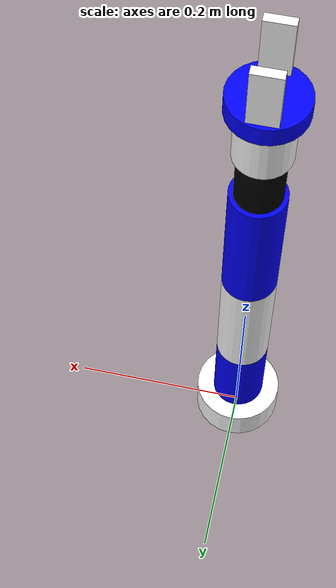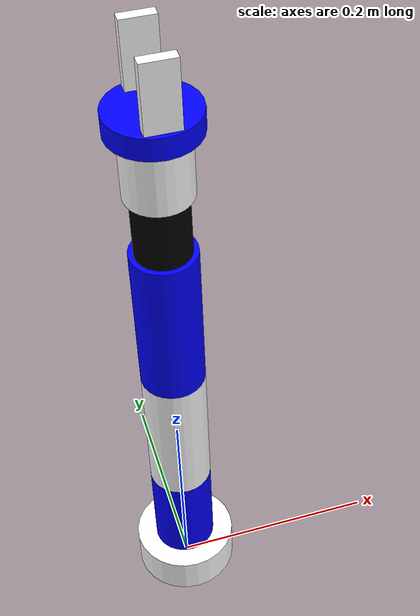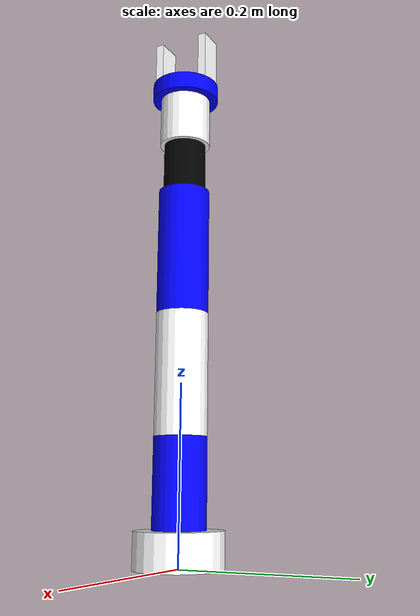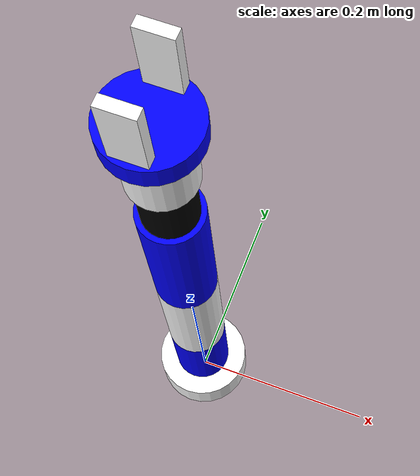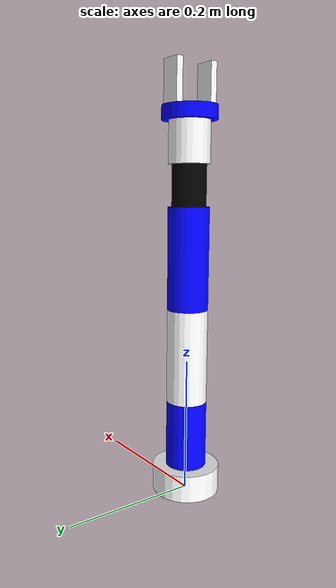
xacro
<?xml version="1.0"?>
<robot name="marm" xmlns:xacro="http://www.ros.org/wiki/xacro">

    <!-- Defining the colors used in this robot -->
    <material name="Black">
        <color rgba="0 0 0 1"/>
    </material>
    <material name="White">
        <color rgba="1 1 1 1"/>
    </material>
    <material name="Blue">
        <color rgba="0 0 1 1"/>
    </material>
    <material name="Red">
        <color rgba="1 0 0 1"/>
    </material>

    <!-- Constants -->
    <xacro:property name="M_PI" value="3.14159"/>

    <!-- link1 properties -->
    <xacro:property name="link0_radius" value="0.05" />
    <xacro:property name="link0_length" value="0.04" />
    <xacro:property name="link0_mass" value="1" />

    <!-- link1 properties -->
    <xacro:property name="link1_radius" value="0.03" />
    <xacro:property name="link1_length" value="0.10" />
    <xacro:property name="link1_mass" value="1" />

    <!-- link2 properties -->
    <xacro:property name="link2_radius" value="0.03" />
    <xacro:property name="link2_length" value="0.14" />
    <xacro:property name="link2_mass" value="0.8" />

    <!-- link3 properties -->
    <xacro:property name="link3_radius" value="0.03" />
    <xacro:property name="link3_length" value="0.15" />
    <xacro:property name="link3_mass" value="0.8" />

    <!-- link4 properties -->
    <xacro:property name="link4_radius" value="0.025" />
    <xacro:property name="link4_length" value="0.06" />
    <xacro:property name="link4_mass" value="0.7" />

    <!-- link5 properties -->
    <xacro:property name="link5_radius" value="0.03" />
    <xacro:property name="link5_length" value="0.06" />
    <xacro:property name="link5_mass" value="0.7" />

    <!-- link6 properties -->
    <xacro:property name="link6_radius" value="0.04" />
    <xacro:property name="link6_length" value="0.02" />
    <xacro:property name="link6_mass" value="0.6" />

    <!-- gripper -->
    <xacro:property name="gripper_length" value="0.03" />
    <xacro:property name="gripper_width" value="0.01" />
    <xacro:property name="gripper_height" value="0.06" />
    <xacro:property name="gripper_mass" value="0.5" />

    <!-- Gripper frame -->
    <xacro:property name="grasp_frame_radius" value="0.001" />

    <!-- Macro for inertia matrix -->
    <xacro:macro name="cylinder_inertial_matrix" params="m r h">
        <inertial>
            <mass value="${m}" />
            <inertia ixx="${m*(3*r*r+h*h)/12}" ixy = "0" ixz = "0"
                iyy="${m*(3*r*r+h*h)/12}" iyz = "0"
                izz="${m*r*r/2}" />
        </inertial>
    </xacro:macro>

    <xacro:macro name="box_inertial_matrix" params="m w h d">
        <inertial>
            <mass value="${m}" />
            <inertia ixx="${m*(h*h+d*d)/12}" ixy = "0" ixz = "0"
                iyy="${m*(w*w+d*d)/12}" iyz = "0"
                izz="${m*(w*w+h*h)/12}" />
        </inertial>
    </xacro:macro>

    <!-- /////////////////////////////////////   ARM BASE    ////////////////////////////////////////////// -->
    <!-- 地盘，一般不需要碰撞，只需要显示 -->
    <link name="base_link">
        <visual>
            <origin xyz="0 0 0" rpy="0 0 0" />
            <geometry>
                <box size="0.001 0.001 0.001" />
            </geometry>
        </visual>
    </link>

    <!-- 串联，连接上面的link0 -->
    <joint name="base_joint" type="fixed">
        <origin xyz="0 0 ${link0_length/2}" rpy="0 0 0" />
        <parent link="base_link"/>
        <child link="link0" />
    </joint>

    <!-- /////////////////////////////////////    LINK0    ////////////////////////////////////////////// -->
    <link name="link0">
        <visual>
            <origin xyz="0 0 0" rpy="0 0 0" />
            <geometry>
                <cylinder radius="${link0_radius}" length="${link0_length}"/>
            </geometry>
            <material name="White" />
        </visual>
        <collision>
            <origin xyz="0 0 0" rpy="0 0 0" />
            <geometry>
                <cylinder radius="${link0_radius}" length="${link0_length}"/>
            </geometry>
        </collision>
        <cylinder_inertial_matrix m="${link0_mass}" r="${link0_radius}" h="${link0_length}"/>
    </link>

    <joint name="joint1" type="revolute">
        <parent link="link0"/>
        <child link="link1"/>
        <origin xyz="0 0 ${link0_length/2}" rpy="0 ${M_PI/2} 0" />
        <axis xyz="-1 0 0" />
        <limit effort="300" velocity="1" lower="${-M_PI}" upper="${M_PI}"/>
    </joint>

    <!-- /////////////////////////////////////   LINK1  ////////////////////////////////////////////// -->
    <link name="link1" >
        <visual>
            <origin xyz="-${link1_length/2} 0 0" rpy="0 ${M_PI/2} 0" />
            <geometry>
                <cylinder radius="${link1_radius}" length="${link1_length}"/>
            </geometry>
            <material name="Blue" />
        </visual>
        <collision>
            <origin xyz="-${link1_length/2} 0 0" rpy="0 ${M_PI/2} 0" />
            <geometry>
                <cylinder radius="${link1_radius}" length="${link1_length}"/>
            </geometry>
        </collision>
        <cylinder_inertial_matrix m="${link1_mass}" r="${link1_radius}" h="${link1_length}"/>
    </link>

    <joint name="joint2" type="revolute">
        <parent link="link1"/>
        <child link="link2"/>
        <origin xyz="-${link1_length} 0 0.0" rpy="-${M_PI/2} 0 ${M_PI/2}" />
        <axis xyz="1 0 0" />
        <limit effort="300" velocity="1" lower="${-M_PI}" upper="${M_PI}" />
    </joint>

    <!-- ///////////////////////////////////////   LINK2  ////////////////////////////////////////////// -->
    <link name="link2" >
        <visual>
            <origin xyz="0 0 ${link2_length/2}" rpy="0 0 0" />
            <geometry>
                <cylinder radius="${link2_radius}" length="${link2_length}"/>
            </geometry>
            <material name="White" />
        </visual>

        <collision>
            <origin xyz="0 0 ${link2_length/2}" rpy="0 0 0" />
            <geometry>
                <cylinder radius="${link2_radius}" length="${link2_length}"/>
            </geometry>
        </collision>
        <cylinder_inertial_matrix m="${link2_mass}" r="${link2_radius}" h="${link2_length}"/>
    </link>

    <joint name="joint3" type="revolute">
        <parent link="link2"/>
        <child link="link3"/>
        <origin xyz="0 0 ${link2_length}" rpy="0 ${M_PI} 0" />
        <axis xyz="-1 0 0" />
        <limit effort="300" velocity="1" lower="${-M_PI}" upper="${M_PI}" />
    </joint>

    <!-- /////////////////////////////////   LINK3  ///////////////////////////////////////////////////// -->
    <link name="link3" >
        <visual>
            <origin xyz="0 0 -${link3_length/2}" rpy="0 0 0" />
            <geometry>
                <cylinder radius="${link3_radius}" length="${link3_length}"/>
            </geometry>
            <material name="Blue" />
        </visual>
        <collision>
            <origin xyz="0 0 -${link3_length/2}" rpy="0 0 0" />
            <geometry>
                <cylinder radius="${link3_radius}" length="${link3_length}"/>
            </geometry>
        </collision>
        <cylinder_inertial_matrix m="${link3_mass}" r="${link3_radius}" h="${link3_length}"/>
    </link>

    <joint name="joint4" type="revolute">
        <parent link="link3"/>
        <child link="link4"/>
        <origin xyz="0.0 0.0 -${link3_length}" rpy="0 ${M_PI/2} ${M_PI}" />
        <axis xyz="1 0 0" />
        <limit effort="300" velocity="1" lower="${-M_PI}" upper="${M_PI}" />
    </joint>

    <!-- ///////////////////////////////////   LINK4  //////////////////////////////////////////////// -->
    <link name="link4" >
        <visual>
            <origin xyz="${link4_length/2} 0 0" rpy="0 ${M_PI/2} 0" />
            <geometry>
                <cylinder radius="${link4_radius}" length="${link4_length}"/>
            </geometry>
            <material name="Black" />
        </visual>
        <collision>
            <origin xyz="${link4_length/2} 0 0" rpy="0 ${M_PI/2} 0" />
            <geometry>
                <cylinder radius="${link4_radius}" length="${link4_length}"/>
            </geometry>
        </collision>
        <cylinder_inertial_matrix m="${link4_mass}" r="${link4_radius}" h="${link4_length}"/>
    </link>

    <joint name="joint5" type="revolute">
        <parent link="link4"/>
        <child link="link5"/>
        <origin xyz="${link4_length} 0.0 0.0" rpy="0 ${M_PI/2} 0" />
        <axis xyz="1 0 0" />
        <limit effort="300" velocity="1" lower="${-M_PI}" upper="${M_PI}" />
    </joint>

    <!-- //////////////////////////////////   LINK5  ///////////////////////////////////////////////// -->
    <link name="link5">
        <visual>
            <origin xyz="0 0 ${link4_length/2}" rpy="0 0 0" />
            <geometry>
                <cylinder radius="${link5_radius}" length="${link5_length}"/>
            </geometry>
            <material name="White" />
        </visual>
        <collision>
            <origin xyz="0 0 ${link4_length/2} " rpy="0 0 0" />
            <geometry>
                <cylinder radius="${link5_radius}" length="${link5_length}"/>
            </geometry>
        </collision>
        <cylinder_inertial_matrix m="${link5_mass}" r="${link5_radius}" h="${link5_length}"/>
    </link>

    <joint name="joint6" type="revolute">
        <parent link="link5"/>
        <child link="link6"/>
        <origin xyz="0 0 ${link4_length}" rpy="${1.5*M_PI} -${M_PI/2} 0" />
        <axis xyz="1 0 0" />
        <limit effort="300" velocity="1" lower="${-2*M_PI}" upper="${2*M_PI}" />
    </joint>

    <!-- ////////////////////////////////   LINK6  ///////////////////////////////////////////////// -->
    <link name="link6">
        <visual>
            <origin xyz="${link6_length/2} 0 0 " rpy="0 ${M_PI/2} 0" />
            <geometry>
                <cylinder radius="${link6_radius}" length="${link6_length}"/>
            </geometry>
            <material name="Blue" />
        </visual>
        <collision>
            <origin xyz="${link6_length/2} 0 0" rpy="0 ${M_PI/2} 0" />
            <geometry>
                <cylinder radius="${link6_radius}" length="${link6_length}"/>
            </geometry>
        </collision>
        <cylinder_inertial_matrix m="${link6_mass}" r="${link6_radius}" h="${link6_length}"/>
    </link>

    <joint name="finger_joint1" type="prismatic">
        <parent link="link6"/>
        <child link="gripper_finger_link1"/>
        <origin xyz="${link6_length} -0.03 0" rpy="0 0 0" />
        <axis xyz="0 1 0" />
        <limit effort="100" lower="0" upper="0.06" velocity="0.02"/>
    </joint>

    <!-- //////////////////////////////////////   gripper   ////////////////////////////////////////////// -->
    <!-- LEFT GRIPPER AFT LINK -->
    <link name="gripper_finger_link1">
        <visual>
            <origin xyz="${gripper_height/2} 0 0" rpy="0 ${M_PI/2} 0" />
            <geometry>
                <box size="${gripper_length} ${gripper_width} ${gripper_height}" />
            </geometry>
            <material name="White" />
        </visual>
        <collision>
            <origin xyz="${gripper_height/2} 0 0" rpy="0 ${M_PI/2} 0" />
            <geometry>
                <box size="${gripper_length} ${gripper_width} ${gripper_height}" />
            </geometry>
        </collision>
        <box_inertial_matrix m="${gripper_mass}" w="${gripper_width}" h="${gripper_height}" d="${gripper_length}"/>
    </link>

    <joint name="finger_joint2" type="fixed">
        <parent link="link6"/>
        <child link="gripper_finger_link2"/>
        <origin xyz="${link6_length} 0.03 0" rpy="0 0 0" />
    </joint>

    <!-- RIGHT GRIPPER AFT LINK -->
    <link name="gripper_finger_link2">
        <visual>
            <origin xyz="${gripper_height/2} 0 0" rpy="0 ${M_PI/2} 0" />
            <geometry>
                <box size="${gripper_length} ${gripper_width} ${gripper_height}" />
            </geometry>
            <material name="White" />
        </visual>
        <collision>
            <origin xyz="${gripper_height/2} 0 0" rpy="0 ${M_PI/2} 0" />
            <geometry>
                <box size="${gripper_length} ${gripper_width} ${gripper_height}" />
            </geometry>
        </collision>
        <box_inertial_matrix m="${gripper_mass}" w="${gripper_width}" h="${gripper_height}" d="${gripper_length}"/>
    </link>

    <!-- Grasping frame -->
    <link name="grasping_frame"/>

    <joint name="grasping_frame_joint" type="fixed">
        <parent link="link6"/>
        <child link="grasping_frame"/>
        <origin xyz="${gripper_height} 0 0" rpy="0 0 0"/>
    </joint>

</robot>
